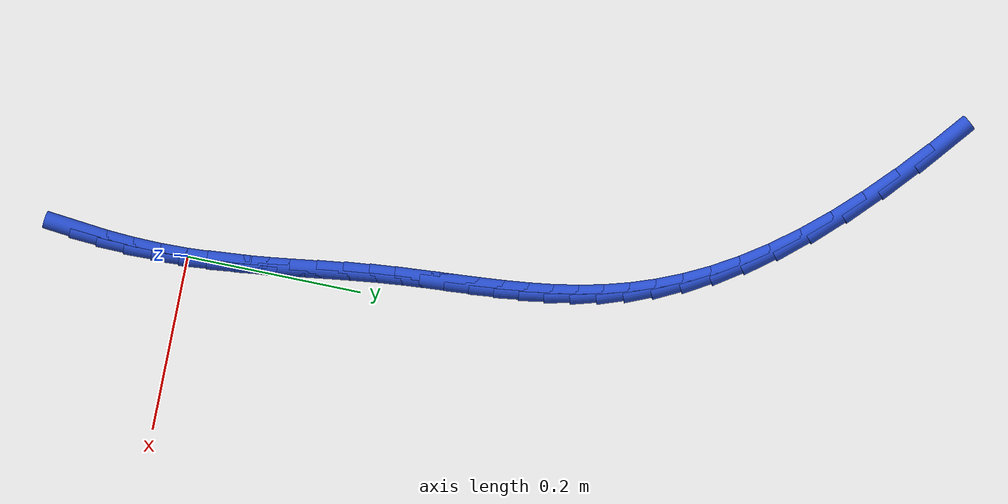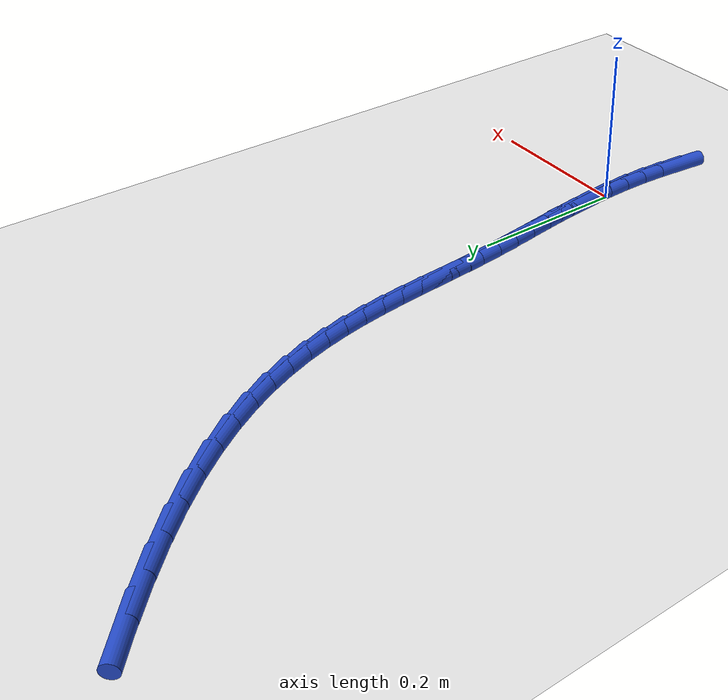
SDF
<sdf version="1.6">
 <world name="default">
  <model name="ground_plane">
   <static>1</static>
   <link name="link">
    <collision name="collision">
     <geometry><plane><normal>0 0 1</normal><size>100 100</size></plane></geometry>
     <surface><friction><ode><mu>100</mu><mu2>50</mu2></ode></friction></surface>
    </collision>
    <visual name="visual">
     <cast_shadows>0</cast_shadows>
     <geometry><plane><normal>0 0 1</normal><size>100 100</size></plane></geometry>
     <material>
      <script><uri>file://media/materials/scripts/gazebo.material</uri><name>Gazebo/WhiteGlow</name></script>
     </material>
    </visual>
   </link>
  </model>
  <model name="line">
   <link name="link_0">
    <pose>6.938893903907228e-18 -5.551115123125783e-17 0.01 0 1.57 -1.5088992156621004</pose>
    <collision name="collision">
     <geometry><cylinder><radius>0.01</radius><length>0.08</length></cylinder></geometry>
    </collision>
    <visual name="visual">
     <material>
      <script><name>Gazebo/Blue</name><uri>file://media/materials/scripts/gazebo.material</uri></script>
     </material>
     <geometry><cylinder><radius>0.01</radius><length>0.08</length></cylinder></geometry>
    </visual>
   </link>
   <link name="link_1">
    <pose>-0.0019610523935351372 0.03164198278255451 0.01 0 1.57 -1.477729259361162</pose>
    <collision name="collision">
     <geometry><cylinder><radius>0.01</radius><length>0.08</length></cylinder></geometry>
    </collision>
    <visual name="visual">
     <material>
      <script><name>Gazebo/Blue</name><uri>file://media/materials/scripts/gazebo.material</uri></script>
     </material>
     <geometry><cylinder><radius>0.01</radius><length>0.08</length></cylinder></geometry>
    </visual>
   </link>
   <link name="link_2">
    <pose>-0.0048991539546748555 0.06312050651057965 0.01 0 1.57 -1.4550887492550557</pose>
    <collision name="collision">
     <geometry><cylinder><radius>0.01</radius><length>0.08</length></cylinder></geometry>
    </collision>
    <visual name="visual">
     <material>
      <script><name>Gazebo/Blue</name><uri>file://media/materials/scripts/gazebo.material</uri></script>
     </material>
     <geometry><cylinder><radius>0.01</radius><length>0.08</length></cylinder></geometry>
    </visual>
   </link>
   <link name="link_3">
    <pose>-0.008532511172250455 0.09438144936738568 0.01 0 1.57 -1.4409432503999768</pose>
    <collision name="collision">
     <geometry><cylinder><radius>0.01</radius><length>0.08</length></cylinder></geometry>
    </collision>
    <visual name="visual">
     <material>
      <script><name>Gazebo/Blue</name><uri>file://media/materials/scripts/gazebo.material</uri></script>
     </material>
     <geometry><cylinder><radius>0.01</radius><length>0.08</length></cylinder></geometry>
    </visual>
   </link>
   <link name="link_4">
    <pose>-0.012579330535093244 0.1253706895362829 0.01 0 1.57 -1.4353610421950345</pose>
    <collision name="collision">
     <geometry><cylinder><radius>0.01</radius><length>0.08</length></cylinder></geometry>
    </collision>
    <visual name="visual">
     <material>
      <script><name>Gazebo/Blue</name><uri>file://media/materials/scripts/gazebo.material</uri></script>
     </material>
     <geometry><cylinder><radius>0.01</radius><length>0.08</length></cylinder></geometry>
    </visual>
   </link>
   <link name="link_5">
    <pose>-0.016757818532034546 0.15603410520058167 0.01 0 1.57 -1.4385508494420716</pose>
    <collision name="collision">
     <geometry><cylinder><radius>0.01</radius><length>0.08</length></cylinder></geometry>
    </collision>
    <visual name="visual">
     <material>
      <script><name>Gazebo/Blue</name><uri>file://media/materials/scripts/gazebo.material</uri></script>
     </material>
     <geometry><cylinder><radius>0.01</radius><length>0.08</length></cylinder></geometry>
    </visual>
   </link>
   <link name="link_6">
    <pose>-0.020786181651905634 0.18631757454359216 0.01 0 1.57 -1.450888004517983</pose>
    <collision name="collision">
     <geometry><cylinder><radius>0.01</radius><length>0.08</length></cylinder></geometry>
    </collision>
    <visual name="visual">
     <material>
      <script><name>Gazebo/Blue</name><uri>file://media/materials/scripts/gazebo.material</uri></script>
     </material>
     <geometry><cylinder><radius>0.01</radius><length>0.08</length></cylinder></geometry>
    </visual>
   </link>
   <link name="link_7">
    <pose>-0.024382626383537838 0.21616697574862476 0.01 0 1.57 -1.4714316381948433</pose>
    <collision name="collision">
     <geometry><cylinder><radius>0.01</radius><length>0.08</length></cylinder></geometry>
    </collision>
    <visual name="visual">
     <material>
      <script><name>Gazebo/Blue</name><uri>file://media/materials/scripts/gazebo.material</uri></script>
     </material>
     <geometry><cylinder><radius>0.01</radius><length>0.08</length></cylinder></geometry>
    </visual>
   </link>
   <link name="link_8">
    <pose>-0.0273108293734939 0.24553917660356017 0.01 0 1.57 -1.488860914362205</pose>
    <collision name="collision">
     <geometry><cylinder><radius>0.01</radius><length>0.08</length></cylinder></geometry>
    </collision>
    <visual name="visual">
     <material>
      <script><name>Gazebo/Blue</name><uri>file://media/materials/scripts/gazebo.material</uri></script>
     </material>
     <geometry><cylinder><radius>0.01</radius><length>0.08</length></cylinder></geometry>
    </visual>
   </link>
   <link name="link_9">
    <pose>-0.02968712273781465 0.2744762775928978 0.01 0 1.57 -1.4972683014813488</pose>
    <collision name="collision">
     <geometry><cylinder><radius>0.01</radius><length>0.08</length></cylinder></geometry>
    </collision>
    <visual name="visual">
     <material>
      <script><name>Gazebo/Blue</name><uri>file://media/materials/scripts/gazebo.material</uri></script>
     </material>
     <geometry><cylinder><radius>0.01</radius><length>0.08</length></cylinder></geometry>
    </visual>
   </link>
   <link name="link_10">
    <pose>-0.031792638569010816 0.3030602094252879 0.01 0 1.57 -1.4961705828656344</pose>
    <collision name="collision">
     <geometry><cylinder><radius>0.01</radius><length>0.08</length></cylinder></geometry>
    </collision>
    <visual name="visual">
     <material>
      <script><name>Gazebo/Blue</name><uri>file://media/materials/scripts/gazebo.material</uri></script>
     </material>
     <geometry><cylinder><radius>0.01</radius><length>0.08</length></cylinder></geometry>
    </visual>
   </link>
   <link name="link_11">
    <pose>-0.033909442160713704 0.33137312835316146 0.01 0 1.57 -1.4853078793083827</pose>
    <collision name="collision">
     <geometry><cylinder><radius>0.01</radius><length>0.08</length></cylinder></geometry>
    </collision>
    <visual name="visual">
     <material>
      <script><name>Gazebo/Blue</name><uri>file://media/materials/scripts/gazebo.material</uri></script>
     </material>
     <geometry><cylinder><radius>0.01</radius><length>0.08</length></cylinder></geometry>
    </visual>
   </link>
   <link name="link_12">
    <pose>-0.036319598806554644 0.35949719062894975 0.01 0 1.57 -1.4646353467689244</pose>
    <collision name="collision">
     <geometry><cylinder><radius>0.01</radius><length>0.08</length></cylinder></geometry>
    </collision>
    <visual name="visual">
     <material>
      <script><name>Gazebo/Blue</name><uri>file://media/materials/scripts/gazebo.material</uri></script>
     </material>
     <geometry><cylinder><radius>0.01</radius><length>0.08</length></cylinder></geometry>
    </visual>
   </link>
   <link name="link_13">
    <pose>-0.03930517380016497 0.38751455250508404 0.01 0 1.57 -1.4343619140981554</pose>
    <collision name="collision">
     <geometry><cylinder><radius>0.01</radius><length>0.08</length></cylinder></geometry>
    </collision>
    <visual name="visual">
     <material>
      <script><name>Gazebo/Blue</name><uri>file://media/materials/scripts/gazebo.material</uri></script>
     </material>
     <geometry><cylinder><radius>0.01</radius><length>0.08</length></cylinder></geometry>
    </visual>
   </link>
   <link name="link_14">
    <pose>-0.04314823243517599 0.4155073702339952 0.01 0 1.57 -1.3949996194770606</pose>
    <collision name="collision">
     <geometry><cylinder><radius>0.01</radius><length>0.08</length></cylinder></geometry>
    </collision>
    <visual name="visual">
     <material>
      <script><name>Gazebo/Blue</name><uri>file://media/materials/scripts/gazebo.material</uri></script>
     </material>
     <geometry><cylinder><radius>0.01</radius><length>0.08</length></cylinder></geometry>
    </visual>
   </link>
   <link name="link_15">
    <pose>-0.04813084000521904 0.4435578000681148 0.01 0 1.57 -1.3474088254699563</pose>
    <collision name="collision">
     <geometry><cylinder><radius>0.01</radius><length>0.08</length></cylinder></geometry>
    </collision>
    <visual name="visual">
     <material>
      <script><name>Gazebo/Blue</name><uri>file://media/materials/scripts/gazebo.material</uri></script>
     </material>
     <geometry><cylinder><radius>0.01</radius><length>0.08</length></cylinder></geometry>
    </visual>
   </link>
   <link name="link_16">
    <pose>-0.05453506180392547 0.47174799825987396 0.01 0 1.57 -1.29281715194622</pose>
    <collision name="collision">
     <geometry><cylinder><radius>0.01</radius><length>0.08</length></cylinder></geometry>
    </collision>
    <visual name="visual">
     <material>
      <script><name>Gazebo/Blue</name><uri>file://media/materials/scripts/gazebo.material</uri></script>
     </material>
     <geometry><cylinder><radius>0.01</radius><length>0.08</length></cylinder></geometry>
    </visual>
   </link>
   <link name="link_17">
    <pose>-0.06264296312492657 0.5001601210617035 0.01 0 1.57 -1.2327889124168592</pose>
    <collision name="collision">
     <geometry><cylinder><radius>0.01</radius><length>0.08</length></cylinder></geometry>
    </collision>
    <visual name="visual">
     <material>
      <script><name>Gazebo/Blue</name><uri>file://media/materials/scripts/gazebo.material</uri></script>
     </material>
     <geometry><cylinder><radius>0.01</radius><length>0.08</length></cylinder></geometry>
    </visual>
   </link>
   <link name="link_18">
    <pose>-0.07273660926185364 0.528876324726035 0.01 0 1.57 -1.1691317881069503</pose>
    <collision name="collision">
     <geometry><cylinder><radius>0.01</radius><length>0.08</length></cylinder></geometry>
    </collision>
    <visual name="visual">
     <material>
      <script><name>Gazebo/Blue</name><uri>file://media/materials/scripts/gazebo.material</uri></script>
     </material>
     <geometry><cylinder><radius>0.01</radius><length>0.08</length></cylinder></geometry>
    </visual>
   </link>
   <link name="link_19">
    <pose>-0.0850980655083381 0.5579787655052993 0.01 0 1.57 -1.1037480698506</pose>
    <collision name="collision">
     <geometry><cylinder><radius>0.01</radius><length>0.08</length></cylinder></geometry>
    </collision>
    <visual name="visual">
     <material>
      <script><name>Gazebo/Blue</name><uri>file://media/materials/scripts/gazebo.material</uri></script>
     </material>
     <geometry><cylinder><radius>0.01</radius><length>0.08</length></cylinder></geometry>
    </visual>
   </link>
   <link name="link_20">
    <pose>-0.10000939715801119 0.587549599651928 0.01 0 1.57 -1.0384605199145034</pose>
    <collision name="collision">
     <geometry><cylinder><radius>0.01</radius><length>0.08</length></cylinder></geometry>
    </collision>
    <visual name="visual">
     <material>
      <script><name>Gazebo/Blue</name><uri>file://media/materials/scripts/gazebo.material</uri></script>
     </material>
     <geometry><cylinder><radius>0.01</radius><length>0.08</length></cylinder></geometry>
    </visual>
   </link>
   <link name="link_21">
    <pose>-0.11775266950450428 0.6176709834183519 0.01 0 1.57 -0.9748547876700769</pose>
    <collision name="collision">
     <geometry><cylinder><radius>0.01</radius><length>0.08</length></cylinder></geometry>
    </collision>
    <visual name="visual">
     <material>
      <script><name>Gazebo/Blue</name><uri>file://media/materials/scripts/gazebo.material</uri></script>
     </material>
     <geometry><cylinder><radius>0.01</radius><length>0.08</length></cylinder></geometry>
    </visual>
   </link>
   <link name="link_22">
    <pose>-0.13860994784144864 0.6484250730570021 0.01 0 1.57 -0.9141737521492417</pose>
    <collision name="collision">
     <geometry><cylinder><radius>0.01</radius><length>0.08</length></cylinder></geometry>
    </collision>
    <visual name="visual">
     <material>
      <script><name>Gazebo/Blue</name><uri>file://media/materials/scripts/gazebo.material</uri></script>
     </material>
     <geometry><cylinder><radius>0.01</radius><length>0.08</length></cylinder></geometry>
    </visual>
   </link>
   <link name="link_23">
    <pose>-0.1628632974624757 0.6798940248203104 0.01 0 1.57 -0.8572785468898613</pose>
    <collision name="collision">
     <geometry><cylinder><radius>0.01</radius><length>0.08</length></cylinder></geometry>
    </collision>
    <visual name="visual">
     <material>
      <script><name>Gazebo/Blue</name><uri>file://media/materials/scripts/gazebo.material</uri></script>
     </material>
     <geometry><cylinder><radius>0.01</radius><length>0.08</length></cylinder></geometry>
    </visual>
   </link>
   <link name="link_24">
    <pose>-0.1907947836612167 0.7121599949607074 0.01 0 1.57 -0.8049406382359237</pose>
    <collision name="collision">
     <geometry><cylinder><radius>0.01</radius><length>0.08</length></cylinder></geometry>
    </collision>
    <visual name="visual">
     <material>
      <script><name>Gazebo/Blue</name><uri>file://media/materials/scripts/gazebo.material</uri></script>
     </material>
     <geometry><cylinder><radius>0.01</radius><length>0.08</length></cylinder></geometry>
    </visual>
   </link>
   <link name="link_25">
    <pose>-0.2226429407834202 0.7452779115926293 0.01 0 1.57 -0.7602624368892206</pose>
    <collision name="collision">
     <geometry><cylinder><radius>0.01</radius><length>0.08</length></cylinder></geometry>
    </collision>
    <visual name="visual">
     <material>
      <script><name>Gazebo/Blue</name><uri>file://media/materials/scripts/gazebo.material</uri></script>
     </material>
     <geometry><cylinder><radius>0.01</radius><length>0.08</length></cylinder></geometry>
    </visual>
   </link>
   <link name="link_26">
    <pose>-0.2579929372510982 0.7788940294981375 0.01 0 1.57 -0.7226090901260351</pose>
    <collision name="collision">
     <geometry><cylinder><radius>0.01</radius><length>0.08</length></cylinder></geometry>
    </collision>
    <visual name="visual">
     <material>
      <script><name>Gazebo/Blue</name><uri>file://media/materials/scripts/gazebo.material</uri></script>
     </material>
     <geometry><cylinder><radius>0.01</radius><length>0.08</length></cylinder></geometry>
    </visual>
   </link>
   <link name="link_27">
    <pose>-0.2959259470729695 0.8123393603942715 0.01 0 1.57 -0.6889044936429538</pose>
    <collision name="collision">
     <geometry><cylinder><radius>0.01</radius><length>0.08</length></cylinder></geometry>
    </collision>
    <visual name="visual">
     <material>
      <script><name>Gazebo/Blue</name><uri>file://media/materials/scripts/gazebo.material</uri></script>
     </material>
     <geometry><cylinder><radius>0.01</radius><length>0.08</length></cylinder></geometry>
    </visual>
   </link>
   <link name="link_276">
    <pose>-0.004940416543657521 -0.1261502113694592 0.01 0 1.57 1.4670032063896483</pose>
    <collision name="collision">
     <geometry><cylinder><radius>0.01</radius><length>0.08</length></cylinder></geometry>
    </collision>
    <visual name="visual">
     <material>
      <script><name>Gazebo/Blue</name><uri>file://media/materials/scripts/gazebo.material</uri></script>
     </material>
     <geometry><cylinder><radius>0.01</radius><length>0.08</length></cylinder></geometry>
    </visual>
   </link>
   <link name="link_277">
    <pose>-0.0016910281538373953 -0.09495631892589679 0.01 0 1.57 1.511141733846077</pose>
    <collision name="collision">
     <geometry><cylinder><radius>0.01</radius><length>0.08</length></cylinder></geometry>
    </collision>
    <visual name="visual">
     <material>
      <script><name>Gazebo/Blue</name><uri>file://media/materials/scripts/gazebo.material</uri></script>
     </material>
     <geometry><cylinder><radius>0.01</radius><length>0.08</length></cylinder></geometry>
    </visual>
   </link>
   <link name="link_278">
    <pose>0.0001915002122844624 -0.0634366212154069 0.01 0 1.57 1.5533953641415799</pose>
    <collision name="collision">
     <geometry><cylinder><radius>0.01</radius><length>0.08</length></cylinder></geometry>
    </collision>
    <visual name="visual">
     <material>
      <script><name>Gazebo/Blue</name><uri>file://media/materials/scripts/gazebo.material</uri></script>
     </material>
     <geometry><cylinder><radius>0.01</radius><length>0.08</length></cylinder></geometry>
    </visual>
   </link>
   <link name="link_279">
    <pose>0.0007431743363497181 -0.03173616573957763 0.01 0 1.57 -1.5473833366227168</pose>
    <collision name="collision">
     <geometry><cylinder><radius>0.01</radius><length>0.08</length></cylinder></geometry>
    </collision>
    <visual name="visual">
     <material>
      <script><name>Gazebo/Blue</name><uri>file://media/materials/scripts/gazebo.material</uri></script>
     </material>
     <geometry><cylinder><radius>0.01</radius><length>0.08</length></cylinder></geometry>
    </visual>
   </link>
   <link name="link_280">
    <pose>6.071532165918825e-18 -2.7755575615628914e-17 0.01 0 1.57 -1.5075794484994747</pose>
    <collision name="collision">
     <geometry><cylinder><radius>0.01</radius><length>0.08</length></cylinder></geometry>
    </collision>
    <visual name="visual">
     <material>
      <script><name>Gazebo/Blue</name><uri>file://media/materials/scripts/gazebo.material</uri></script>
     </material>
     <geometry><cylinder><radius>0.01</radius><length>0.08</length></cylinder></geometry>
    </visual>
   </link>
   <link name="link_281">
    <pose>-0.002002017015122967 0.03162682850173786 0.01 0 1.57 -1.468363531419153</pose>
    <collision name="collision">
     <geometry><cylinder><radius>0.01</radius><length>0.08</length></cylinder></geometry>
    </collision>
    <visual name="visual">
     <material>
      <script><name>Gazebo/Blue</name><uri>file://media/materials/scripts/gazebo.material</uri></script>
     </material>
     <geometry><cylinder><radius>0.01</radius><length>0.08</length></cylinder></geometry>
    </visual>
   </link>
   <link name="link_282">
    <pose>-0.005226870927377531 0.062999272264047 0.01 0 1.57 -1.4880187503548217</pose>
    <collision name="collision">
     <geometry><cylinder><radius>0.01</radius><length>0.08</length></cylinder></geometry>
    </collision>
    <visual name="visual">
     <material>
      <script><name>Gazebo/Blue</name><uri>file://media/materials/scripts/gazebo.material</uri></script>
     </material>
     <geometry><cylinder><radius>0.01</radius><length>0.08</length></cylinder></geometry>
    </visual>
   </link>
  </model>
 </world>
</sdf>
